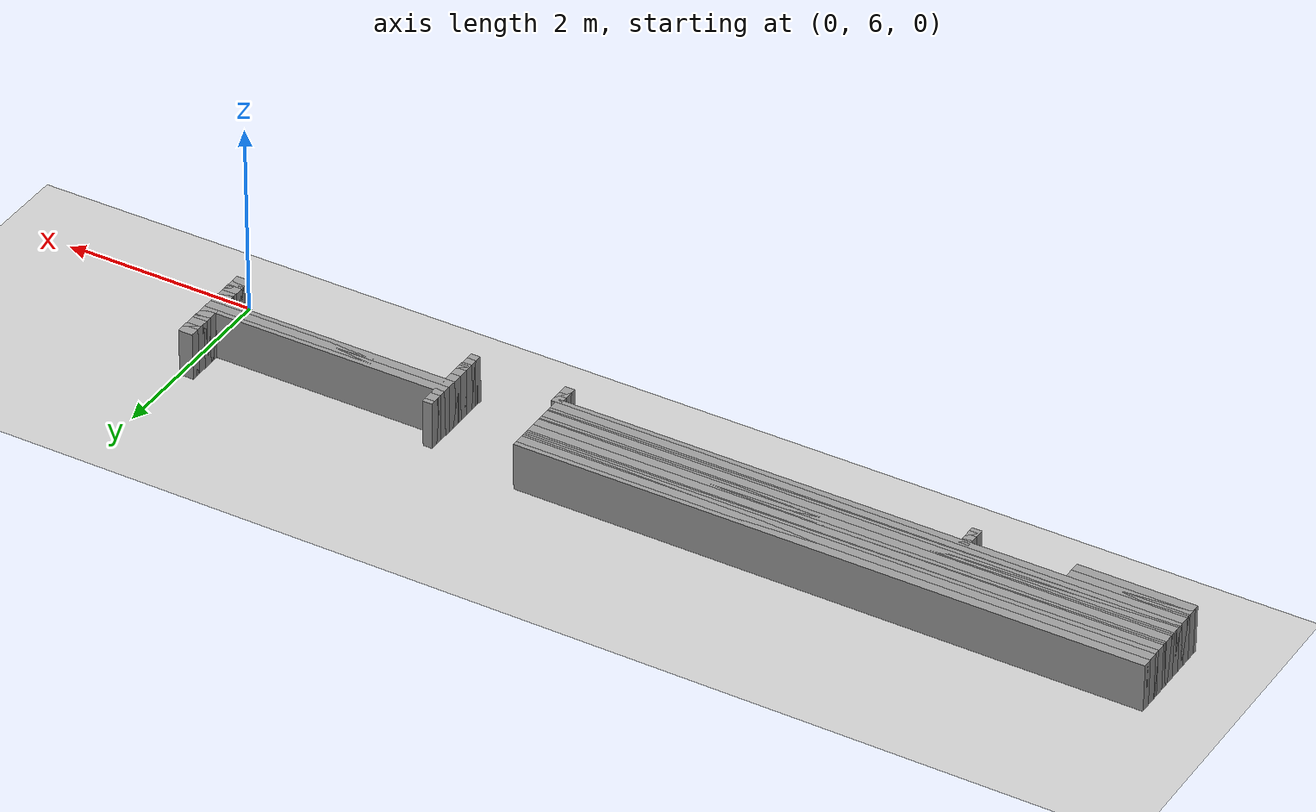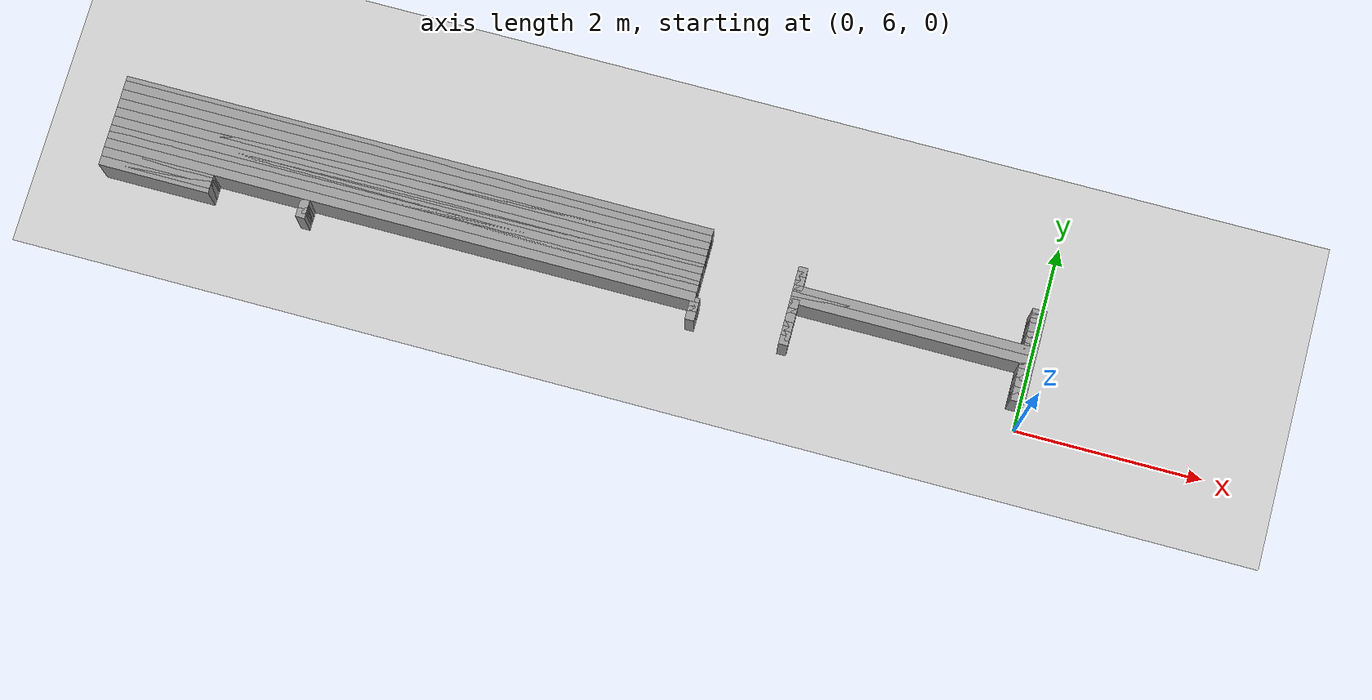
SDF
<sdf version="1.6">
 <world name="GridMap">
  <include><uri>model://sun</uri></include>
  <include><uri>model://ground_plane</uri></include>
  <model name="GridMap">
   <link name="Wall_(51.0,124.0)">
    <collision name="Wall_(51.0,124.0)_Collision">
     <geometry><box><size>0.1 0.1 0.5</size></box></geometry>
     <pose>-2.5500000000000003 6.2 0.25 0 -0 0</pose>
    </collision>
    <inertial>
     <mass>0.5</mass>
     <pose>0 0.01 0 0 0 0</pose>
     <inertia><ixx>0.004</ixx><ixy>0.001</ixy><ixz>0</ixz><iyy>0.006</iyy><iyz>0</iyz><izz>0.007</izz></inertia>
    </inertial>
    <visual name="Wall_(51.0,124.0)_Visual">
     <geometry><box><size>0.1 0.1 0.5</size></box></geometry>
     <pose>-2.5500000000000003 6.2 0.25 0 -0 0</pose>
     <material>
      <script><uri>file://media/materials/scripts/gazebo.material</uri><name>Gazebo/Grey</name></script>
      <ambient>1 1 1 1</ambient>
     </material>
     <meta><layer>0</layer></meta>
    </visual>
   </link>
   <link name="Wall_(71.0,124.0)">
    <collision name="Wall_(71.0,124.0)_Collision">
     <geometry><box><size>0.1 0.1 0.5</size></box></geometry>
     <pose>-3.5500000000000003 6.2 0.25 0 -0 0</pose>
    </collision>
    <inertial>
     <mass>0.5</mass>
     <pose>0 0.01 0 0 0 0</pose>
     <inertia><ixx>0.004</ixx><ixy>0.001</ixy><ixz>0</ixz><iyy>0.006</iyy><iyz>0</iyz><izz>0.007</izz></inertia>
    </inertial>
    <visual name="Wall_(71.0,124.0)_Visual">
     <geometry><box><size>0.1 0.1 0.5</size></box></geometry>
     <pose>-3.5500000000000003 6.2 0.25 0 -0 0</pose>
     <material>
      <script><uri>file://media/materials/scripts/gazebo.material</uri><name>Gazebo/Grey</name></script>
      <ambient>1 1 1 1</ambient>
     </material>
     <meta><layer>0</layer></meta>
    </visual>
   </link>
   <link name="Wall_(155.0,124.0)">
    <collision name="Wall_(155.0,124.0)_Collision">
     <geometry><box><size>0.1 0.1 0.5</size></box></geometry>
     <pose>-7.75 6.2 0.25 0 -0 0</pose>
    </collision>
    <inertial>
     <mass>0.5</mass>
     <pose>0 0.01 0 0 0 0</pose>
     <inertia><ixx>0.004</ixx><ixy>0.001</ixy><ixz>0</ixz><iyy>0.006</iyy><iyz>0</iyz><izz>0.007</izz></inertia>
    </inertial>
    <visual name="Wall_(155.0,124.0)_Visual">
     <geometry><box><size>0.1 0.1 0.5</size></box></geometry>
     <pose>-7.75 6.2 0.25 0 -0 0</pose>
     <material>
      <script><uri>file://media/materials/scripts/gazebo.material</uri><name>Gazebo/Grey</name></script>
      <ambient>1 1 1 1</ambient>
     </material>
     <meta><layer>0</layer></meta>
    </visual>
   </link>
   <link name="Wall_(187.0,124.0)">
    <collision name="Wall_(187.0,124.0)_Collision">
     <geometry><box><size>1.2000000000000002 0.1 0.5</size></box></geometry>
     <pose>-9.35 6.2 0.25 0 -0 0</pose>
    </collision>
    <inertial>
     <mass>0.5</mass>
     <pose>0 0.01 0 0 0 0</pose>
     <inertia><ixx>0.004</ixx><ixy>0.001</ixy><ixz>0</ixz><iyy>0.006</iyy><iyz>0</iyz><izz>0.007</izz></inertia>
    </inertial>
    <visual name="Wall_(187.0,124.0)_Visual">
     <geometry><box><size>1.2000000000000002 0.1 0.5</size></box></geometry>
     <pose>-9.35 6.2 0.25 0 -0 0</pose>
     <material>
      <script><uri>file://media/materials/scripts/gazebo.material</uri><name>Gazebo/Grey</name></script>
      <ambient>1 1 1 1</ambient>
     </material>
     <meta><layer>0</layer></meta>
    </visual>
   </link>
   <link name="Wall_(1.5,125.0)">
    <collision name="Wall_(1.5,125.0)_Collision">
     <geometry><box><size>0.15000000000000002 0.1 0.5</size></box></geometry>
     <pose>-0.07500000000000001 6.25 0.25 0 -0 0</pose>
    </collision>
    <inertial>
     <mass>0.5</mass>
     <pose>0 0.01 0 0 0 0</pose>
     <inertia><ixx>0.004</ixx><ixy>0.001</ixy><ixz>0</ixz><iyy>0.006</iyy><iyz>0</iyz><izz>0.007</izz></inertia>
    </inertial>
    <visual name="Wall_(1.5,125.0)_Visual">
     <geometry><box><size>0.15000000000000002 0.1 0.5</size></box></geometry>
     <pose>-0.07500000000000001 6.25 0.25 0 -0 0</pose>
     <material>
      <script><uri>file://media/materials/scripts/gazebo.material</uri><name>Gazebo/Grey</name></script>
      <ambient>1 1 1 1</ambient>
     </material>
     <meta><layer>0</layer></meta>
    </visual>
   </link>
   <link name="Wall_(51.0,125.0)">
    <collision name="Wall_(51.0,125.0)_Collision">
     <geometry><box><size>0.1 0.1 0.5</size></box></geometry>
     <pose>-2.5500000000000003 6.25 0.25 0 -0 0</pose>
    </collision>
    <inertial>
     <mass>0.5</mass>
     <pose>0 0.01 0 0 0 0</pose>
     <inertia><ixx>0.004</ixx><ixy>0.001</ixy><ixz>0</ixz><iyy>0.006</iyy><iyz>0</iyz><izz>0.007</izz></inertia>
    </inertial>
    <visual name="Wall_(51.0,125.0)_Visual">
     <geometry><box><size>0.1 0.1 0.5</size></box></geometry>
     <pose>-2.5500000000000003 6.25 0.25 0 -0 0</pose>
     <material>
      <script><uri>file://media/materials/scripts/gazebo.material</uri><name>Gazebo/Grey</name></script>
      <ambient>1 1 1 1</ambient>
     </material>
     <meta><layer>0</layer></meta>
    </visual>
   </link>
   <link name="Wall_(71.0,125.0)">
    <collision name="Wall_(71.0,125.0)_Collision">
     <geometry><box><size>0.1 0.1 0.5</size></box></geometry>
     <pose>-3.5500000000000003 6.25 0.25 0 -0 0</pose>
    </collision>
    <inertial>
     <mass>0.5</mass>
     <pose>0 0.01 0 0 0 0</pose>
     <inertia><ixx>0.004</ixx><ixy>0.001</ixy><ixz>0</ixz><iyy>0.006</iyy><iyz>0</iyz><izz>0.007</izz></inertia>
    </inertial>
    <visual name="Wall_(71.0,125.0)_Visual">
     <geometry><box><size>0.1 0.1 0.5</size></box></geometry>
     <pose>-3.5500000000000003 6.25 0.25 0 -0 0</pose>
     <material>
      <script><uri>file://media/materials/scripts/gazebo.material</uri><name>Gazebo/Grey</name></script>
      <ambient>1 1 1 1</ambient>
     </material>
     <meta><layer>0</layer></meta>
    </visual>
   </link>
   <link name="Wall_(155.0,125.0)">
    <collision name="Wall_(155.0,125.0)_Collision">
     <geometry><box><size>0.1 0.1 0.5</size></box></geometry>
     <pose>-7.75 6.25 0.25 0 -0 0</pose>
    </collision>
    <inertial>
     <mass>0.5</mass>
     <pose>0 0.01 0 0 0 0</pose>
     <inertia><ixx>0.004</ixx><ixy>0.001</ixy><ixz>0</ixz><iyy>0.006</iyy><iyz>0</iyz><izz>0.007</izz></inertia>
    </inertial>
    <visual name="Wall_(155.0,125.0)_Visual">
     <geometry><box><size>0.1 0.1 0.5</size></box></geometry>
     <pose>-7.75 6.25 0.25 0 -0 0</pose>
     <material>
      <script><uri>file://media/materials/scripts/gazebo.material</uri><name>Gazebo/Grey</name></script>
      <ambient>1 1 1 1</ambient>
     </material>
     <meta><layer>0</layer></meta>
    </visual>
   </link>
   <link name="Wall_(187.0,125.0)">
    <collision name="Wall_(187.0,125.0)_Collision">
     <geometry><box><size>1.2000000000000002 0.1 0.5</size></box></geometry>
     <pose>-9.35 6.25 0.25 0 -0 0</pose>
    </collision>
    <inertial>
     <mass>0.5</mass>
     <pose>0 0.01 0 0 0 0</pose>
     <inertia><ixx>0.004</ixx><ixy>0.001</ixy><ixz>0</ixz><iyy>0.006</iyy><iyz>0</iyz><izz>0.007</izz></inertia>
    </inertial>
    <visual name="Wall_(187.0,125.0)_Visual">
     <geometry><box><size>1.2000000000000002 0.1 0.5</size></box></geometry>
     <pose>-9.35 6.25 0.25 0 -0 0</pose>
     <material>
      <script><uri>file://media/materials/scripts/gazebo.material</uri><name>Gazebo/Grey</name></script>
      <ambient>1 1 1 1</ambient>
     </material>
     <meta><layer>0</layer></meta>
    </visual>
   </link>
   <link name="Wall_(1.5,126.0)">
    <collision name="Wall_(1.5,126.0)_Collision">
     <geometry><box><size>0.15000000000000002 0.1 0.5</size></box></geometry>
     <pose>-0.07500000000000001 6.300000000000001 0.25 0 -0 0</pose>
    </collision>
    <inertial>
     <mass>0.5</mass>
     <pose>0 0.01 0 0 0 0</pose>
     <inertia><ixx>0.004</ixx><ixy>0.001</ixy><ixz>0</ixz><iyy>0.006</iyy><iyz>0</iyz><izz>0.007</izz></inertia>
    </inertial>
    <visual name="Wall_(1.5,126.0)_Visual">
     <geometry><box><size>0.15000000000000002 0.1 0.5</size></box></geometry>
     <pose>-0.07500000000000001 6.300000000000001 0.25 0 -0 0</pose>
     <material>
      <script><uri>file://media/materials/scripts/gazebo.material</uri><name>Gazebo/Grey</name></script>
      <ambient>1 1 1 1</ambient>
     </material>
     <meta><layer>0</layer></meta>
    </visual>
   </link>
   <link name="Wall_(51.0,126.0)">
    <collision name="Wall_(51.0,126.0)_Collision">
     <geometry><box><size>0.1 0.1 0.5</size></box></geometry>
     <pose>-2.5500000000000003 6.300000000000001 0.25 0 -0 0</pose>
    </collision>
    <inertial>
     <mass>0.5</mass>
     <pose>0 0.01 0 0 0 0</pose>
     <inertia><ixx>0.004</ixx><ixy>0.001</ixy><ixz>0</ixz><iyy>0.006</iyy><iyz>0</iyz><izz>0.007</izz></inertia>
    </inertial>
    <visual name="Wall_(51.0,126.0)_Visual">
     <geometry><box><size>0.1 0.1 0.5</size></box></geometry>
     <pose>-2.5500000000000003 6.300000000000001 0.25 0 -0 0</pose>
     <material>
      <script><uri>file://media/materials/scripts/gazebo.material</uri><name>Gazebo/Grey</name></script>
      <ambient>1 1 1 1</ambient>
     </material>
     <meta><layer>0</layer></meta>
    </visual>
   </link>
   <link name="Wall_(71.0,126.0)">
    <collision name="Wall_(71.0,126.0)_Collision">
     <geometry><box><size>0.1 0.1 0.5</size></box></geometry>
     <pose>-3.5500000000000003 6.300000000000001 0.25 0 -0 0</pose>
    </collision>
    <inertial>
     <mass>0.5</mass>
     <pose>0 0.01 0 0 0 0</pose>
     <inertia><ixx>0.004</ixx><ixy>0.001</ixy><ixz>0</ixz><iyy>0.006</iyy><iyz>0</iyz><izz>0.007</izz></inertia>
    </inertial>
    <visual name="Wall_(71.0,126.0)_Visual">
     <geometry><box><size>0.1 0.1 0.5</size></box></geometry>
     <pose>-3.5500000000000003 6.300000000000001 0.25 0 -0 0</pose>
     <material>
      <script><uri>file://media/materials/scripts/gazebo.material</uri><name>Gazebo/Grey</name></script>
      <ambient>1 1 1 1</ambient>
     </material>
     <meta><layer>0</layer></meta>
    </visual>
   </link>
   <link name="Wall_(155.0,126.0)">
    <collision name="Wall_(155.0,126.0)_Collision">
     <geometry><box><size>0.1 0.1 0.5</size></box></geometry>
     <pose>-7.75 6.300000000000001 0.25 0 -0 0</pose>
    </collision>
    <inertial>
     <mass>0.5</mass>
     <pose>0 0.01 0 0 0 0</pose>
     <inertia><ixx>0.004</ixx><ixy>0.001</ixy><ixz>0</ixz><iyy>0.006</iyy><iyz>0</iyz><izz>0.007</izz></inertia>
    </inertial>
    <visual name="Wall_(155.0,126.0)_Visual">
     <geometry><box><size>0.1 0.1 0.5</size></box></geometry>
     <pose>-7.75 6.300000000000001 0.25 0 -0 0</pose>
     <material>
      <script><uri>file://media/materials/scripts/gazebo.material</uri><name>Gazebo/Grey</name></script>
      <ambient>1 1 1 1</ambient>
     </material>
     <meta><layer>0</layer></meta>
    </visual>
   </link>
   <link name="Wall_(187.0,126.0)">
    <collision name="Wall_(187.0,126.0)_Collision">
     <geometry><box><size>1.2000000000000002 0.1 0.5</size></box></geometry>
     <pose>-9.35 6.300000000000001 0.25 0 -0 0</pose>
    </collision>
    <inertial>
     <mass>0.5</mass>
     <pose>0 0.01 0 0 0 0</pose>
     <inertia><ixx>0.004</ixx><ixy>0.001</ixy><ixz>0</ixz><iyy>0.006</iyy><iyz>0</iyz><izz>0.007</izz></inertia>
    </inertial>
    <visual name="Wall_(187.0,126.0)_Visual">
     <geometry><box><size>1.2000000000000002 0.1 0.5</size></box></geometry>
     <pose>-9.35 6.300000000000001 0.25 0 -0 0</pose>
     <material>
      <script><uri>file://media/materials/scripts/gazebo.material</uri><name>Gazebo/Grey</name></script>
      <ambient>1 1 1 1</ambient>
     </material>
     <meta><layer>0</layer></meta>
    </visual>
   </link>
   <link name="Wall_(1.5,127.0)">
    <collision name="Wall_(1.5,127.0)_Collision">
     <geometry><box><size>0.15000000000000002 0.1 0.5</size></box></geometry>
     <pose>-0.07500000000000001 6.3500000000000005 0.25 0 -0 0</pose>
    </collision>
    <inertial>
     <mass>0.5</mass>
     <pose>0 0.01 0 0 0 0</pose>
     <inertia><ixx>0.004</ixx><ixy>0.001</ixy><ixz>0</ixz><iyy>0.006</iyy><iyz>0</iyz><izz>0.007</izz></inertia>
    </inertial>
    <visual name="Wall_(1.5,127.0)_Visual">
     <geometry><box><size>0.15000000000000002 0.1 0.5</size></box></geometry>
     <pose>-0.07500000000000001 6.3500000000000005 0.25 0 -0 0</pose>
     <material>
      <script><uri>file://media/materials/scripts/gazebo.material</uri><name>Gazebo/Grey</name></script>
      <ambient>1 1 1 1</ambient>
     </material>
     <meta><layer>0</layer></meta>
    </visual>
   </link>
   <link name="Wall_(51.0,127.0)">
    <collision name="Wall_(51.0,127.0)_Collision">
     <geometry><box><size>0.1 0.1 0.5</size></box></geometry>
     <pose>-2.5500000000000003 6.3500000000000005 0.25 0 -0 0</pose>
    </collision>
    <inertial>
     <mass>0.5</mass>
     <pose>0 0.01 0 0 0 0</pose>
     <inertia><ixx>0.004</ixx><ixy>0.001</ixy><ixz>0</ixz><iyy>0.006</iyy><iyz>0</iyz><izz>0.007</izz></inertia>
    </inertial>
    <visual name="Wall_(51.0,127.0)_Visual">
     <geometry><box><size>0.1 0.1 0.5</size></box></geometry>
     <pose>-2.5500000000000003 6.3500000000000005 0.25 0 -0 0</pose>
     <material>
      <script><uri>file://media/materials/scripts/gazebo.material</uri><name>Gazebo/Grey</name></script>
      <ambient>1 1 1 1</ambient>
     </material>
     <meta><layer>0</layer></meta>
    </visual>
   </link>
   <link name="Wall_(71.0,127.0)">
    <collision name="Wall_(71.0,127.0)_Collision">
     <geometry><box><size>0.1 0.1 0.5</size></box></geometry>
     <pose>-3.5500000000000003 6.3500000000000005 0.25 0 -0 0</pose>
    </collision>
    <inertial>
     <mass>0.5</mass>
     <pose>0 0.01 0 0 0 0</pose>
     <inertia><ixx>0.004</ixx><ixy>0.001</ixy><ixz>0</ixz><iyy>0.006</iyy><iyz>0</iyz><izz>0.007</izz></inertia>
    </inertial>
    <visual name="Wall_(71.0,127.0)_Visual">
     <geometry><box><size>0.1 0.1 0.5</size></box></geometry>
     <pose>-3.5500000000000003 6.3500000000000005 0.25 0 -0 0</pose>
     <material>
      <script><uri>file://media/materials/scripts/gazebo.material</uri><name>Gazebo/Grey</name></script>
      <ambient>1 1 1 1</ambient>
     </material>
     <meta><layer>0</layer></meta>
    </visual>
   </link>
   <link name="Wall_(155.0,127.0)">
    <collision name="Wall_(155.0,127.0)_Collision">
     <geometry><box><size>0.1 0.1 0.5</size></box></geometry>
     <pose>-7.75 6.3500000000000005 0.25 0 -0 0</pose>
    </collision>
    <inertial>
     <mass>0.5</mass>
     <pose>0 0.01 0 0 0 0</pose>
     <inertia><ixx>0.004</ixx><ixy>0.001</ixy><ixz>0</ixz><iyy>0.006</iyy><iyz>0</iyz><izz>0.007</izz></inertia>
    </inertial>
    <visual name="Wall_(155.0,127.0)_Visual">
     <geometry><box><size>0.1 0.1 0.5</size></box></geometry>
     <pose>-7.75 6.3500000000000005 0.25 0 -0 0</pose>
     <material>
      <script><uri>file://media/materials/scripts/gazebo.material</uri><name>Gazebo/Grey</name></script>
      <ambient>1 1 1 1</ambient>
     </material>
     <meta><layer>0</layer></meta>
    </visual>
   </link>
   <link name="Wall_(187.0,127.0)">
    <collision name="Wall_(187.0,127.0)_Collision">
     <geometry><box><size>1.2000000000000002 0.1 0.5</size></box></geometry>
     <pose>-9.35 6.3500000000000005 0.25 0 -0 0</pose>
    </collision>
    <inertial>
     <mass>0.5</mass>
     <pose>0 0.01 0 0 0 0</pose>
     <inertia><ixx>0.004</ixx><ixy>0.001</ixy><ixz>0</ixz><iyy>0.006</iyy><iyz>0</iyz><izz>0.007</izz></inertia>
    </inertial>
    <visual name="Wall_(187.0,127.0)_Visual">
     <geometry><box><size>1.2000000000000002 0.1 0.5</size></box></geometry>
     <pose>-9.35 6.3500000000000005 0.25 0 -0 0</pose>
     <material>
      <script><uri>file://media/materials/scripts/gazebo.material</uri><name>Gazebo/Grey</name></script>
      <ambient>1 1 1 1</ambient>
     </material>
     <meta><layer>0</layer></meta>
    </visual>
   </link>
   <link name="Wall_(1.5,128.0)">
    <collision name="Wall_(1.5,128.0)_Collision">
     <geometry><box><size>0.15000000000000002 0.1 0.5</size></box></geometry>
     <pose>-0.07500000000000001 6.4 0.25 0 -0 0</pose>
    </collision>
    <inertial>
     <mass>0.5</mass>
     <pose>0 0.01 0 0 0 0</pose>
     <inertia><ixx>0.004</ixx><ixy>0.001</ixy><ixz>0</ixz><iyy>0.006</iyy><iyz>0</iyz><izz>0.007</izz></inertia>
    </inertial>
    <visual name="Wall_(1.5,128.0)_Visual">
     <geometry><box><size>0.15000000000000002 0.1 0.5</size></box></geometry>
     <pose>-0.07500000000000001 6.4 0.25 0 -0 0</pose>
     <material>
      <script><uri>file://media/materials/scripts/gazebo.material</uri><name>Gazebo/Grey</name></script>
      <ambient>1 1 1 1</ambient>
     </material>
     <meta><layer>0</layer></meta>
    </visual>
   </link>
   <link name="Wall_(51.0,128.0)">
    <collision name="Wall_(51.0,128.0)_Collision">
     <geometry><box><size>0.1 0.1 0.5</size></box></geometry>
     <pose>-2.5500000000000003 6.4 0.25 0 -0 0</pose>
    </collision>
    <inertial>
     <mass>0.5</mass>
     <pose>0 0.01 0 0 0 0</pose>
     <inertia><ixx>0.004</ixx><ixy>0.001</ixy><ixz>0</ixz><iyy>0.006</iyy><iyz>0</iyz><izz>0.007</izz></inertia>
    </inertial>
    <visual name="Wall_(51.0,128.0)_Visual">
     <geometry><box><size>0.1 0.1 0.5</size></box></geometry>
     <pose>-2.5500000000000003 6.4 0.25 0 -0 0</pose>
     <material>
      <script><uri>file://media/materials/scripts/gazebo.material</uri><name>Gazebo/Grey</name></script>
      <ambient>1 1 1 1</ambient>
     </material>
     <meta><layer>0</layer></meta>
    </visual>
   </link>
   <link name="Wall_(135.0,128.0)">
    <collision name="Wall_(135.0,128.0)_Collision">
     <geometry><box><size>6.4 0.1 0.5</size></box></geometry>
     <pose>-6.75 6.4 0.25 0 -0 0</pose>
    </collision>
    <inertial>
     <mass>0.5</mass>
     <pose>0 0.01 0 0 0 0</pose>
     <inertia><ixx>0.004</ixx><ixy>0.001</ixy><ixz>0</ixz><iyy>0.006</iyy><iyz>0</iyz><izz>0.007</izz></inertia>
    </inertial>
    <visual name="Wall_(135.0,128.0)_Visual">
     <geometry><box><size>6.4 0.1 0.5</size></box></geometry>
     <pose>-6.75 6.4 0.25 0 -0 0</pose>
     <material>
      <script><uri>file://media/materials/scripts/gazebo.material</uri><name>Gazebo/Grey</name></script>
      <ambient>1 1 1 1</ambient>
     </material>
     <meta><layer>0</layer></meta>
    </visual>
   </link>
   <link name="Wall_(1.5,129.0)">
    <collision name="Wall_(1.5,129.0)_Collision">
     <geometry><box><size>0.15000000000000002 0.1 0.5</size></box></geometry>
     <pose>-0.07500000000000001 6.45 0.25 0 -0 0</pose>
    </collision>
    <inertial>
     <mass>0.5</mass>
     <pose>0 0.01 0 0 0 0</pose>
     <inertia><ixx>0.004</ixx><ixy>0.001</ixy><ixz>0</ixz><iyy>0.006</iyy><iyz>0</iyz><izz>0.007</izz></inertia>
    </inertial>
    <visual name="Wall_(1.5,129.0)_Visual">
     <geometry><box><size>0.15000000000000002 0.1 0.5</size></box></geometry>
     <pose>-0.07500000000000001 6.45 0.25 0 -0 0</pose>
     <material>
      <script><uri>file://media/materials/scripts/gazebo.material</uri><name>Gazebo/Grey</name></script>
      <ambient>1 1 1 1</ambient>
     </material>
     <meta><layer>0</layer></meta>
    </visual>
   </link>
   <link name="Wall_(51.0,129.0)">
    <collision name="Wall_(51.0,129.0)_Collision">
     <geometry><box><size>0.1 0.1 0.5</size></box></geometry>
     <pose>-2.5500000000000003 6.45 0.25 0 -0 0</pose>
    </collision>
    <inertial>
     <mass>0.5</mass>
     <pose>0 0.01 0 0 0 0</pose>
     <inertia><ixx>0.004</ixx><ixy>0.001</ixy><ixz>0</ixz><iyy>0.006</iyy><iyz>0</iyz><izz>0.007</izz></inertia>
    </inertial>
    <visual name="Wall_(51.0,129.0)_Visual">
     <geometry><box><size>0.1 0.1 0.5</size></box></geometry>
     <pose>-2.5500000000000003 6.45 0.25 0 -0 0</pose>
     <material>
      <script><uri>file://media/materials/scripts/gazebo.material</uri><name>Gazebo/Grey</name></script>
      <ambient>1 1 1 1</ambient>
     </material>
     <meta><layer>0</layer></meta>
    </visual>
   </link>
   <link name="Wall_(135.0,129.0)">
    <collision name="Wall_(135.0,129.0)_Collision">
     <geometry><box><size>6.4 0.1 0.5</size></box></geometry>
     <pose>-6.75 6.45 0.25 0 -0 0</pose>
    </collision>
    <inertial>
     <mass>0.5</mass>
     <pose>0 0.01 0 0 0 0</pose>
     <inertia><ixx>0.004</ixx><ixy>0.001</ixy><ixz>0</ixz><iyy>0.006</iyy><iyz>0</iyz><izz>0.007</izz></inertia>
    </inertial>
    <visual name="Wall_(135.0,129.0)_Visual">
     <geometry><box><size>6.4 0.1 0.5</size></box></geometry>
     <pose>-6.75 6.45 0.25 0 -0 0</pose>
     <material>
      <script><uri>file://media/materials/scripts/gazebo.material</uri><name>Gazebo/Grey</name></script>
      <ambient>1 1 1 1</ambient>
     </material>
     <meta><layer>0</layer></meta>
    </visual>
   </link>
   <link name="Wall_(1.5,130.0)">
    <collision name="Wall_(1.5,130.0)_Collision">
     <geometry><box><size>0.15000000000000002 0.1 0.5</size></box></geometry>
     <pose>-0.07500000000000001 6.5 0.25 0 -0 0</pose>
    </collision>
    <inertial>
     <mass>0.5</mass>
     <pose>0 0.01 0 0 0 0</pose>
     <inertia><ixx>0.004</ixx><ixy>0.001</ixy><ixz>0</ixz><iyy>0.006</iyy><iyz>0</iyz><izz>0.007</izz></inertia>
    </inertial>
    <visual name="Wall_(1.5,130.0)_Visual">
     <geometry><box><size>0.15000000000000002 0.1 0.5</size></box></geometry>
     <pose>-0.07500000000000001 6.5 0.25 0 -0 0</pose>
     <material>
      <script><uri>file://media/materials/scripts/gazebo.material</uri><name>Gazebo/Grey</name></script>
      <ambient>1 1 1 1</ambient>
     </material>
     <meta><layer>0</layer></meta>
    </visual>
   </link>
   <link name="Wall_(51.0,130.0)">
    <collision name="Wall_(51.0,130.0)_Collision">
     <geometry><box><size>0.1 0.1 0.5</size></box></geometry>
     <pose>-2.5500000000000003 6.5 0.25 0 -0 0</pose>
    </collision>
    <inertial>
     <mass>0.5</mass>
     <pose>0 0.01 0 0 0 0</pose>
     <inertia><ixx>0.004</ixx><ixy>0.001</ixy><ixz>0</ixz><iyy>0.006</iyy><iyz>0</iyz><izz>0.007</izz></inertia>
    </inertial>
    <visual name="Wall_(51.0,130.0)_Visual">
     <geometry><box><size>0.1 0.1 0.5</size></box></geometry>
     <pose>-2.5500000000000003 6.5 0.25 0 -0 0</pose>
     <material>
      <script><uri>file://media/materials/scripts/gazebo.material</uri><name>Gazebo/Grey</name></script>
      <ambient>1 1 1 1</ambient>
     </material>
     <meta><layer>0</layer></meta>
    </visual>
   </link>
   <link name="Wall_(135.0,130.0)">
    <collision name="Wall_(135.0,130.0)_Collision">
     <geometry><box><size>6.4 0.1 0.5</size></box></geometry>
     <pose>-6.75 6.5 0.25 0 -0 0</pose>
    </collision>
    <inertial>
     <mass>0.5</mass>
     <pose>0 0.01 0 0 0 0</pose>
     <inertia><ixx>0.004</ixx><ixy>0.001</ixy><ixz>0</ixz><iyy>0.006</iyy><iyz>0</iyz><izz>0.007</izz></inertia>
    </inertial>
    <visual name="Wall_(135.0,130.0)_Visual">
     <geometry><box><size>6.4 0.1 0.5</size></box></geometry>
     <pose>-6.75 6.5 0.25 0 -0 0</pose>
     <material>
      <script><uri>file://media/materials/scripts/gazebo.material</uri><name>Gazebo/Grey</name></script>
      <ambient>1 1 1 1</ambient>
     </material>
     <meta><layer>0</layer></meta>
    </visual>
   </link>
   <link name="Wall_(1.5,131.0)">
    <collision name="Wall_(1.5,131.0)_Collision">
     <geometry><box><size>0.15000000000000002 0.1 0.5</size></box></geometry>
     <pose>-0.07500000000000001 6.550000000000001 0.25 0 -0 0</pose>
    </collision>
    <inertial>
     <mass>0.5</mass>
     <pose>0 0.01 0 0 0 0</pose>
     <inertia><ixx>0.004</ixx><ixy>0.001</ixy><ixz>0</ixz><iyy>0.006</iyy><iyz>0</iyz><izz>0.007</izz></inertia>
    </inertial>
    <visual name="Wall_(1.5,131.0)_Visual">
     <geometry><box><size>0.15000000000000002 0.1 0.5</size></box></geometry>
     <pose>-0.07500000000000001 6.550000000000001 0.25 0 -0 0</pose>
     <material>
      <script><uri>file://media/materials/scripts/gazebo.material</uri><name>Gazebo/Grey</name></script>
      <ambient>1 1 1 1</ambient>
     </material>
     <meta><layer>0</layer></meta>
    </visual>
   </link>
   <link name="Wall_(51.0,131.0)">
    <collision name="Wall_(51.0,131.0)_Collision">
     <geometry><box><size>0.1 0.1 0.5</size></box></geometry>
     <pose>-2.5500000000000003 6.550000000000001 0.25 0 -0 0</pose>
    </collision>
    <inertial>
     <mass>0.5</mass>
     <pose>0 0.01 0 0 0 0</pose>
     <inertia><ixx>0.004</ixx><ixy>0.001</ixy><ixz>0</ixz><iyy>0.006</iyy><iyz>0</iyz><izz>0.007</izz></inertia>
    </inertial>
    <visual name="Wall_(51.0,131.0)_Visual">
     <geometry><box><size>0.1 0.1 0.5</size></box></geometry>
     <pose>-2.5500000000000003 6.550000000000001 0.25 0 -0 0</pose>
     <material>
      <script><uri>file://media/materials/scripts/gazebo.material</uri><name>Gazebo/Grey</name></script>
      <ambient>1 1 1 1</ambient>
     </material>
     <meta><layer>0</layer></meta>
    </visual>
   </link>
   <link name="Wall_(135.0,131.0)">
    <collision name="Wall_(135.0,131.0)_Collision">
     <geometry><box><size>6.4 0.1 0.5</size></box></geometry>
     <pose>-6.75 6.550000000000001 0.25 0 -0 0</pose>
    </collision>
    <inertial>
     <mass>0.5</mass>
     <pose>0 0.01 0 0 0 0</pose>
     <inertia><ixx>0.004</ixx><ixy>0.001</ixy><ixz>0</ixz><iyy>0.006</iyy><iyz>0</iyz><izz>0.007</izz></inertia>
    </inertial>
    <visual name="Wall_(135.0,131.0)_Visual">
     <geometry><box><size>6.4 0.1 0.5</size></box></geometry>
     <pose>-6.75 6.550000000000001 0.25 0 -0 0</pose>
     <material>
      <script><uri>file://media/materials/scripts/gazebo.material</uri><name>Gazebo/Grey</name></script>
      <ambient>1 1 1 1</ambient>
     </material>
     <meta><layer>0</layer></meta>
    </visual>
   </link>
   <link name="Wall_(1.5,132.0)">
    <collision name="Wall_(1.5,132.0)_Collision">
     <geometry><box><size>0.15000000000000002 0.1 0.5</size></box></geometry>
     <pose>-0.07500000000000001 6.6000000000000005 0.25 0 -0 0</pose>
    </collision>
    <inertial>
     <mass>0.5</mass>
     <pose>0 0.01 0 0 0 0</pose>
     <inertia><ixx>0.004</ixx><ixy>0.001</ixy><ixz>0</ixz><iyy>0.006</iyy><iyz>0</iyz><izz>0.007</izz></inertia>
    </inertial>
    <visual name="Wall_(1.5,132.0)_Visual">
     <geometry><box><size>0.15000000000000002 0.1 0.5</size></box></geometry>
     <pose>-0.07500000000000001 6.6000000000000005 0.25 0 -0 0</pose>
     <material>
      <script><uri>file://media/materials/scripts/gazebo.material</uri><name>Gazebo/Grey</name></script>
      <ambient>1 1 1 1</ambient>
     </material>
     <meta><layer>0</layer></meta>
    </visual>
   </link>
   <link name="Wall_(51.0,132.0)">
    <collision name="Wall_(51.0,132.0)_Collision">
     <geometry><box><size>0.1 0.1 0.5</size></box></geometry>
     <pose>-2.5500000000000003 6.6000000000000005 0.25 0 -0 0</pose>
    </collision>
    <inertial>
     <mass>0.5</mass>
     <pose>0 0.01 0 0 0 0</pose>
     <inertia><ixx>0.004</ixx><ixy>0.001</ixy><ixz>0</ixz><iyy>0.006</iyy><iyz>0</iyz><izz>0.007</izz></inertia>
    </inertial>
    <visual name="Wall_(51.0,132.0)_Visual">
     <geometry><box><size>0.1 0.1 0.5</size></box></geometry>
     <pose>-2.5500000000000003 6.6000000000000005 0.25 0 -0 0</pose>
     <material>
      <script><uri>file://media/materials/scripts/gazebo.material</uri><name>Gazebo/Grey</name></script>
      <ambient>1 1 1 1</ambient>
     </material>
     <meta><layer>0</layer></meta>
    </visual>
   </link>
   <link name="Wall_(135.0,132.0)">
    <collision name="Wall_(135.0,132.0)_Collision">
     <geometry><box><size>6.4 0.1 0.5</size></box></geometry>
     <pose>-6.75 6.6000000000000005 0.25 0 -0 0</pose>
    </collision>
    <inertial>
     <mass>0.5</mass>
     <pose>0 0.01 0 0 0 0</pose>
     <inertia><ixx>0.004</ixx><ixy>0.001</ixy><ixz>0</ixz><iyy>0.006</iyy><iyz>0</iyz><izz>0.007</izz></inertia>
    </inertial>
    <visual name="Wall_(135.0,132.0)_Visual">
     <geometry><box><size>6.4 0.1 0.5</size></box></geometry>
     <pose>-6.75 6.6000000000000005 0.25 0 -0 0</pose>
     <material>
      <script><uri>file://media/materials/scripts/gazebo.material</uri><name>Gazebo/Grey</name></script>
      <ambient>1 1 1 1</ambient>
     </material>
     <meta><layer>0</layer></meta>
    </visual>
   </link>
   <link name="Wall_(26.0,133.0)">
    <collision name="Wall_(26.0,133.0)_Collision">
     <geometry><box><size>2.6 0.1 0.5</size></box></geometry>
     <pose>-1.3 6.65 0.25 0 -0 0</pose>
    </collision>
    <inertial>
     <mass>0.5</mass>
     <pose>0 0.01 0 0 0 0</pose>
     <inertia><ixx>0.004</ixx><ixy>0.001</ixy><ixz>0</ixz><iyy>0.006</iyy><iyz>0</iyz><izz>0.007</izz></inertia>
    </inertial>
    <visual name="Wall_(26.0,133.0)_Visual">
     <geometry><box><size>2.6 0.1 0.5</size></box></geometry>
     <pose>-1.3 6.65 0.25 0 -0 0</pose>
     <material>
      <script><uri>file://media/materials/scripts/gazebo.material</uri><name>Gazebo/Grey</name></script>
      <ambient>1 1 1 1</ambient>
     </material>
     <meta><layer>0</layer></meta>
    </visual>
   </link>
   <link name="Wall_(135.0,133.0)">
    <collision name="Wall_(135.0,133.0)_Collision">
     <geometry><box><size>6.4 0.1 0.5</size></box></geometry>
     <pose>-6.75 6.65 0.25 0 -0 0</pose>
    </collision>
    <inertial>
     <mass>0.5</mass>
     <pose>0 0.01 0 0 0 0</pose>
     <inertia><ixx>0.004</ixx><ixy>0.001</ixy><ixz>0</ixz><iyy>0.006</iyy><iyz>0</iyz><izz>0.007</izz></inertia>
    </inertial>
    <visual name="Wall_(135.0,133.0)_Visual">
     <geometry><box><size>6.4 0.1 0.5</size></box></geometry>
     <pose>-6.75 6.65 0.25 0 -0 0</pose>
     <material>
      <script><uri>file://media/materials/scripts/gazebo.material</uri><name>Gazebo/Grey</name></script>
      <ambient>1 1 1 1</ambient>
     </material>
     <meta><layer>0</layer></meta>
    </visual>
   </link>
   <link name="Wall_(26.0,134.0)">
    <collision name="Wall_(26.0,134.0)_Collision">
     <geometry><box><size>2.6 0.1 0.5</size></box></geometry>
     <pose>-1.3 6.7 0.25 0 -0 0</pose>
    </collision>
    <inertial>
     <mass>0.5</mass>
     <pose>0 0.01 0 0 0 0</pose>
     <inertia><ixx>0.004</ixx><ixy>0.001</ixy><ixz>0</ixz><iyy>0.006</iyy><iyz>0</iyz><izz>0.007</izz></inertia>
    </inertial>
    <visual name="Wall_(26.0,134.0)_Visual">
     <geometry><box><size>2.6 0.1 0.5</size></box></geometry>
     <pose>-1.3 6.7 0.25 0 -0 0</pose>
     <material>
      <script><uri>file://media/materials/scripts/gazebo.material</uri><name>Gazebo/Grey</name></script>
      <ambient>1 1 1 1</ambient>
     </material>
     <meta><layer>0</layer></meta>
    </visual>
   </link>
   <link name="Wall_(135.0,134.0)">
    <collision name="Wall_(135.0,134.0)_Collision">
     <geometry><box><size>6.4 0.1 0.5</size></box></geometry>
     <pose>-6.75 6.7 0.25 0 -0 0</pose>
    </collision>
    <inertial>
     <mass>0.5</mass>
     <pose>0 0.01 0 0 0 0</pose>
     <inertia><ixx>0.004</ixx><ixy>0.001</ixy><ixz>0</ixz><iyy>0.006</iyy><iyz>0</iyz><izz>0.007</izz></inertia>
    </inertial>
    <visual name="Wall_(135.0,134.0)_Visual">
     <geometry><box><size>6.4 0.1 0.5</size></box></geometry>
     <pose>-6.75 6.7 0.25 0 -0 0</pose>
     <material>
      <script><uri>file://media/materials/scripts/gazebo.material</uri><name>Gazebo/Grey</name></script>
      <ambient>1 1 1 1</ambient>
     </material>
     <meta><layer>0</layer></meta>
    </visual>
   </link>
   <link name="Wall_(26.0,135.0)">
    <collision name="Wall_(26.0,135.0)_Collision">
     <geometry><box><size>2.6 0.1 0.5</size></box></geometry>
     <pose>-1.3 6.75 0.25 0 -0 0</pose>
    </collision>
    <inertial>
     <mass>0.5</mass>
     <pose>0 0.01 0 0 0 0</pose>
     <inertia><ixx>0.004</ixx><ixy>0.001</ixy><ixz>0</ixz><iyy>0.006</iyy><iyz>0</iyz><izz>0.007</izz></inertia>
    </inertial>
    <visual name="Wall_(26.0,135.0)_Visual">
     <geometry><box><size>2.6 0.1 0.5</size></box></geometry>
     <pose>-1.3 6.75 0.25 0 -0 0</pose>
     <material>
      <script><uri>file://media/materials/scripts/gazebo.material</uri><name>Gazebo/Grey</name></script>
      <ambient>1 1 1 1</ambient>
     </material>
     <meta><layer>0</layer></meta>
    </visual>
   </link>
   <link name="Wall_(135.0,135.0)">
    <collision name="Wall_(135.0,135.0)_Collision">
     <geometry><box><size>6.4 0.1 0.5</size></box></geometry>
     <pose>-6.75 6.75 0.25 0 -0 0</pose>
    </collision>
    <inertial>
     <mass>0.5</mass>
     <pose>0 0.01 0 0 0 0</pose>
     <inertia><ixx>0.004</ixx><ixy>0.001</ixy><ixz>0</ixz><iyy>0.006</iyy><iyz>0</iyz><izz>0.007</izz></inertia>
    </inertial>
    <visual name="Wall_(135.0,135.0)_Visual">
     <geometry><box><size>6.4 0.1 0.5</size></box></geometry>
     <pose>-6.75 6.75 0.25 0 -0 0</pose>
     <material>
      <script><uri>file://media/materials/scripts/gazebo.material</uri><name>Gazebo/Grey</name></script>
      <ambient>1 1 1 1</ambient>
     </material>
     <meta><layer>0</layer></meta>
    </visual>
   </link>
   <link name="Wall_(1.5,136.0)">
    <collision name="Wall_(1.5,136.0)_Collision">
     <geometry><box><size>0.15000000000000002 0.1 0.5</size></box></geometry>
     <pose>-0.07500000000000001 6.800000000000001 0.25 0 -0 0</pose>
    </collision>
    <inertial>
     <mass>0.5</mass>
     <pose>0 0.01 0 0 0 0</pose>
     <inertia><ixx>0.004</ixx><ixy>0.001</ixy><ixz>0</ixz><iyy>0.006</iyy><iyz>0</iyz><izz>0.007</izz></inertia>
    </inertial>
    <visual name="Wall_(1.5,136.0)_Visual">
     <geometry><box><size>0.15000000000000002 0.1 0.5</size></box></geometry>
     <pose>-0.07500000000000001 6.800000000000001 0.25 0 -0 0</pose>
     <material>
      <script><uri>file://media/materials/scripts/gazebo.material</uri><name>Gazebo/Grey</name></script>
      <ambient>1 1 1 1</ambient>
     </material>
     <meta><layer>0</layer></meta>
    </visual>
   </link>
   <link name="Wall_(51.0,136.0)">
    <collision name="Wall_(51.0,136.0)_Collision">
     <geometry><box><size>0.1 0.1 0.5</size></box></geometry>
     <pose>-2.5500000000000003 6.800000000000001 0.25 0 -0 0</pose>
    </collision>
    <inertial>
     <mass>0.5</mass>
     <pose>0 0.01 0 0 0 0</pose>
     <inertia><ixx>0.004</ixx><ixy>0.001</ixy><ixz>0</ixz><iyy>0.006</iyy><iyz>0</iyz><izz>0.007</izz></inertia>
    </inertial>
    <visual name="Wall_(51.0,136.0)_Visual">
     <geometry><box><size>0.1 0.1 0.5</size></box></geometry>
     <pose>-2.5500000000000003 6.800000000000001 0.25 0 -0 0</pose>
     <material>
      <script><uri>file://media/materials/scripts/gazebo.material</uri><name>Gazebo/Grey</name></script>
      <ambient>1 1 1 1</ambient>
     </material>
     <meta><layer>0</layer></meta>
    </visual>
   </link>
   <link name="Wall_(135.0,136.0)">
    <collision name="Wall_(135.0,136.0)_Collision">
     <geometry><box><size>6.4 0.1 0.5</size></box></geometry>
     <pose>-6.75 6.800000000000001 0.25 0 -0 0</pose>
    </collision>
    <inertial>
     <mass>0.5</mass>
     <pose>0 0.01 0 0 0 0</pose>
     <inertia><ixx>0.004</ixx><ixy>0.001</ixy><ixz>0</ixz><iyy>0.006</iyy><iyz>0</iyz><izz>0.007</izz></inertia>
    </inertial>
    <visual name="Wall_(135.0,136.0)_Visual">
     <geometry><box><size>6.4 0.1 0.5</size></box></geometry>
     <pose>-6.75 6.800000000000001 0.25 0 -0 0</pose>
     <material>
      <script><uri>file://media/materials/scripts/gazebo.material</uri><name>Gazebo/Grey</name></script>
      <ambient>1 1 1 1</ambient>
     </material>
     <meta><layer>0</layer></meta>
    </visual>
   </link>
   <link name="Wall_(1.5,137.0)">
    <collision name="Wall_(1.5,137.0)_Collision">
     <geometry><box><size>0.15000000000000002 0.1 0.5</size></box></geometry>
     <pose>-0.07500000000000001 6.8500000000000005 0.25 0 -0 0</pose>
    </collision>
    <inertial>
     <mass>0.5</mass>
     <pose>0 0.01 0 0 0 0</pose>
     <inertia><ixx>0.004</ixx><ixy>0.001</ixy><ixz>0</ixz><iyy>0.006</iyy><iyz>0</iyz><izz>0.007</izz></inertia>
    </inertial>
    <visual name="Wall_(1.5,137.0)_Visual">
     <geometry><box><size>0.15000000000000002 0.1 0.5</size></box></geometry>
     <pose>-0.07500000000000001 6.8500000000000005 0.25 0 -0 0</pose>
     <material>
      <script><uri>file://media/materials/scripts/gazebo.material</uri><name>Gazebo/Grey</name></script>
      <ambient>1 1 1 1</ambient>
     </material>
     <meta><layer>0</layer></meta>
    </visual>
   </link>
   <link name="Wall_(51.0,137.0)">
    <collision name="Wall_(51.0,137.0)_Collision">
     <geometry><box><size>0.1 0.1 0.5</size></box></geometry>
     <pose>-2.5500000000000003 6.8500000000000005 0.25 0 -0 0</pose>
    </collision>
    <inertial>
     <mass>0.5</mass>
     <pose>0 0.01 0 0 0 0</pose>
     <inertia><ixx>0.004</ixx><ixy>0.001</ixy><ixz>0</ixz><iyy>0.006</iyy><iyz>0</iyz><izz>0.007</izz></inertia>
    </inertial>
    <visual name="Wall_(51.0,137.0)_Visual">
     <geometry><box><size>0.1 0.1 0.5</size></box></geometry>
     <pose>-2.5500000000000003 6.8500000000000005 0.25 0 -0 0</pose>
     <material>
      <script><uri>file://media/materials/scripts/gazebo.material</uri><name>Gazebo/Grey</name></script>
      <ambient>1 1 1 1</ambient>
     </material>
     <meta><layer>0</layer></meta>
    </visual>
   </link>
   <link name="Wall_(135.0,137.0)">
    <collision name="Wall_(135.0,137.0)_Collision">
     <geometry><box><size>6.4 0.1 0.5</size></box></geometry>
     <pose>-6.75 6.8500000000000005 0.25 0 -0 0</pose>
    </collision>
    <inertial>
     <mass>0.5</mass>
     <pose>0 0.01 0 0 0 0</pose>
     <inertia><ixx>0.004</ixx><ixy>0.001</ixy><ixz>0</ixz><iyy>0.006</iyy><iyz>0</iyz><izz>0.007</izz></inertia>
    </inertial>
    <visual name="Wall_(135.0,137.0)_Visual">
     <geometry><box><size>6.4 0.1 0.5</size></box></geometry>
     <pose>-6.75 6.8500000000000005 0.25 0 -0 0</pose>
     <material>
      <script><uri>file://media/materials/scripts/gazebo.material</uri><name>Gazebo/Grey</name></script>
      <ambient>1 1 1 1</ambient>
     </material>
     <meta><layer>0</layer></meta>
    </visual>
   </link>
   <link name="Wall_(1.5,138.0)">
    <collision name="Wall_(1.5,138.0)_Collision">
     <geometry><box><size>0.15000000000000002 0.1 0.5</size></box></geometry>
     <pose>-0.07500000000000001 6.9 0.25 0 -0 0</pose>
    </collision>
    <inertial>
     <mass>0.5</mass>
     <pose>0 0.01 0 0 0 0</pose>
     <inertia><ixx>0.004</ixx><ixy>0.001</ixy><ixz>0</ixz><iyy>0.006</iyy><iyz>0</iyz><izz>0.007</izz></inertia>
    </inertial>
    <visual name="Wall_(1.5,138.0)_Visual">
     <geometry><box><size>0.15000000000000002 0.1 0.5</size></box></geometry>
     <pose>-0.07500000000000001 6.9 0.25 0 -0 0</pose>
     <material>
      <script><uri>file://media/materials/scripts/gazebo.material</uri><name>Gazebo/Grey</name></script>
      <ambient>1 1 1 1</ambient>
     </material>
     <meta><layer>0</layer></meta>
    </visual>
   </link>
   <link name="Wall_(51.0,138.0)">
    <collision name="Wall_(51.0,138.0)_Collision">
     <geometry><box><size>0.1 0.1 0.5</size></box></geometry>
     <pose>-2.5500000000000003 6.9 0.25 0 -0 0</pose>
    </collision>
    <inertial>
     <mass>0.5</mass>
     <pose>0 0.01 0 0 0 0</pose>
     <inertia><ixx>0.004</ixx><ixy>0.001</ixy><ixz>0</ixz><iyy>0.006</iyy><iyz>0</iyz><izz>0.007</izz></inertia>
    </inertial>
    <visual name="Wall_(51.0,138.0)_Visual">
     <geometry><box><size>0.1 0.1 0.5</size></box></geometry>
     <pose>-2.5500000000000003 6.9 0.25 0 -0 0</pose>
     <material>
      <script><uri>file://media/materials/scripts/gazebo.material</uri><name>Gazebo/Grey</name></script>
      <ambient>1 1 1 1</ambient>
     </material>
     <meta><layer>0</layer></meta>
    </visual>
   </link>
   <link name="Wall_(135.0,138.0)">
    <collision name="Wall_(135.0,138.0)_Collision">
     <geometry><box><size>6.4 0.1 0.5</size></box></geometry>
     <pose>-6.75 6.9 0.25 0 -0 0</pose>
    </collision>
    <inertial>
     <mass>0.5</mass>
     <pose>0 0.01 0 0 0 0</pose>
     <inertia><ixx>0.004</ixx><ixy>0.001</ixy><ixz>0</ixz><iyy>0.006</iyy><iyz>0</iyz><izz>0.007</izz></inertia>
    </inertial>
    <visual name="Wall_(135.0,138.0)_Visual">
     <geometry><box><size>6.4 0.1 0.5</size></box></geometry>
     <pose>-6.75 6.9 0.25 0 -0 0</pose>
     <material>
      <script><uri>file://media/materials/scripts/gazebo.material</uri><name>Gazebo/Grey</name></script>
      <ambient>1 1 1 1</ambient>
     </material>
     <meta><layer>0</layer></meta>
    </visual>
   </link>
   <link name="Wall_(1.5,139.0)">
    <collision name="Wall_(1.5,139.0)_Collision">
     <geometry><box><size>0.15000000000000002 0.1 0.5</size></box></geometry>
     <pose>-0.07500000000000001 6.95 0.25 0 -0 0</pose>
    </collision>
    <inertial>
     <mass>0.5</mass>
     <pose>0 0.01 0 0 0 0</pose>
     <inertia><ixx>0.004</ixx><ixy>0.001</ixy><ixz>0</ixz><iyy>0.006</iyy><iyz>0</iyz><izz>0.007</izz></inertia>
    </inertial>
    <visual name="Wall_(1.5,139.0)_Visual">
     <geometry><box><size>0.15000000000000002 0.1 0.5</size></box></geometry>
     <pose>-0.07500000000000001 6.95 0.25 0 -0 0</pose>
     <material>
      <script><uri>file://media/materials/scripts/gazebo.material</uri><name>Gazebo/Grey</name></script>
      <ambient>1 1 1 1</ambient>
     </material>
     <meta><layer>0</layer></meta>
    </visual>
   </link>
   <link name="Wall_(51.0,139.0)">
    <collision name="Wall_(51.0,139.0)_Collision">
     <geometry><box><size>0.1 0.1 0.5</size></box></geometry>
     <pose>-2.5500000000000003 6.95 0.25 0 -0 0</pose>
    </collision>
    <inertial>
     <mass>0.5</mass>
     <pose>0 0.01 0 0 0 0</pose>
     <inertia><ixx>0.004</ixx><ixy>0.001</ixy><ixz>0</ixz><iyy>0.006</iyy><iyz>0</iyz><izz>0.007</izz></inertia>
    </inertial>
    <visual name="Wall_(51.0,139.0)_Visual">
     <geometry><box><size>0.1 0.1 0.5</size></box></geometry>
     <pose>-2.5500000000000003 6.95 0.25 0 -0 0</pose>
     <material>
      <script><uri>file://media/materials/scripts/gazebo.material</uri><name>Gazebo/Grey</name></script>
      <ambient>1 1 1 1</ambient>
     </material>
     <meta><layer>0</layer></meta>
    </visual>
   </link>
   <link name="Wall_(135.0,139.0)">
    <collision name="Wall_(135.0,139.0)_Collision">
     <geometry><box><size>6.4 0.1 0.5</size></box></geometry>
     <pose>-6.75 6.95 0.25 0 -0 0</pose>
    </collision>
    <inertial>
     <mass>0.5</mass>
     <pose>0 0.01 0 0 0 0</pose>
     <inertia><ixx>0.004</ixx><ixy>0.001</ixy><ixz>0</ixz><iyy>0.006</iyy><iyz>0</iyz><izz>0.007</izz></inertia>
    </inertial>
    <visual name="Wall_(135.0,139.0)_Visual">
     <geometry><box><size>6.4 0.1 0.5</size></box></geometry>
     <pose>-6.75 6.95 0.25 0 -0 0</pose>
     <material>
      <script><uri>file://media/materials/scripts/gazebo.material</uri><name>Gazebo/Grey</name></script>
      <ambient>1 1 1 1</ambient>
     </material>
     <meta><layer>0</layer></meta>
    </visual>
   </link>
   <link name="Wall_(1.5,140.0)">
    <collision name="Wall_(1.5,140.0)_Collision">
     <geometry><box><size>0.15000000000000002 0.1 0.5</size></box></geometry>
     <pose>-0.07500000000000001 7.0 0.25 0 -0 0</pose>
    </collision>
    <inertial>
     <mass>0.5</mass>
     <pose>0 0.01 0 0 0 0</pose>
     <inertia><ixx>0.004</ixx><ixy>0.001</ixy><ixz>0</ixz><iyy>0.006</iyy><iyz>0</iyz><izz>0.007</izz></inertia>
    </inertial>
    <visual name="Wall_(1.5,140.0)_Visual">
     <geometry><box><size>0.15000000000000002 0.1 0.5</size></box></geometry>
     <pose>-0.07500000000000001 7.0 0.25 0 -0 0</pose>
     <material>
      <script><uri>file://media/materials/scripts/gazebo.material</uri><name>Gazebo/Grey</name></script>
      <ambient>1 1 1 1</ambient>
     </material>
     <meta><layer>0</layer></meta>
    </visual>
   </link>
   <link name="Wall_(135.0,140.0)">
    <collision name="Wall_(135.0,140.0)_Collision">
     <geometry><box><size>6.4 0.1 0.5</size></box></geometry>
     <pose>-6.75 7.0 0.25 0 -0 0</pose>
    </collision>
    <inertial>
     <mass>0.5</mass>
     <pose>0 0.01 0 0 0 0</pose>
     <inertia><ixx>0.004</ixx><ixy>0.001</ixy><ixz>0</ixz><iyy>0.006</iyy><iyz>0</iyz><izz>0.007</izz></inertia>
    </inertial>
    <visual name="Wall_(135.0,140.0)_Visual">
     <geometry><box><size>6.4 0.1 0.5</size></box></geometry>
     <pose>-6.75 7.0 0.25 0 -0 0</pose>
     <material>
      <script><uri>file://media/materials/scripts/gazebo.material</uri><name>Gazebo/Grey</name></script>
      <ambient>1 1 1 1</ambient>
     </material>
     <meta><layer>0</layer></meta>
    </visual>
   </link>
   <link name="Wall_(1.5,141.0)">
    <collision name="Wall_(1.5,141.0)_Collision">
     <geometry><box><size>0.15000000000000002 0.1 0.5</size></box></geometry>
     <pose>-0.07500000000000001 7.050000000000001 0.25 0 -0 0</pose>
    </collision>
    <inertial>
     <mass>0.5</mass>
     <pose>0 0.01 0 0 0 0</pose>
     <inertia><ixx>0.004</ixx><ixy>0.001</ixy><ixz>0</ixz><iyy>0.006</iyy><iyz>0</iyz><izz>0.007</izz></inertia>
    </inertial>
    <visual name="Wall_(1.5,141.0)_Visual">
     <geometry><box><size>0.15000000000000002 0.1 0.5</size></box></geometry>
     <pose>-0.07500000000000001 7.050000000000001 0.25 0 -0 0</pose>
     <material>
      <script><uri>file://media/materials/scripts/gazebo.material</uri><name>Gazebo/Grey</name></script>
      <ambient>1 1 1 1</ambient>
     </material>
     <meta><layer>0</layer></meta>
    </visual>
   </link>
   <link name="Wall_(135.0,141.0)">
    <collision name="Wall_(135.0,141.0)_Collision">
     <geometry><box><size>6.4 0.1 0.5</size></box></geometry>
     <pose>-6.75 7.050000000000001 0.25 0 -0 0</pose>
    </collision>
    <inertial>
     <mass>0.5</mass>
     <pose>0 0.01 0 0 0 0</pose>
     <inertia><ixx>0.004</ixx><ixy>0.001</ixy><ixz>0</ixz><iyy>0.006</iyy><iyz>0</iyz><izz>0.007</izz></inertia>
    </inertial>
    <visual name="Wall_(135.0,141.0)_Visual">
     <geometry><box><size>6.4 0.1 0.5</size></box></geometry>
     <pose>-6.75 7.050000000000001 0.25 0 -0 0</pose>
     <material>
      <script><uri>file://media/materials/scripts/gazebo.material</uri><name>Gazebo/Grey</name></script>
      <ambient>1 1 1 1</ambient>
     </material>
     <meta><layer>0</layer></meta>
    </visual>
   </link>
   <link name="Wall_(1.5,142.0)">
    <collision name="Wall_(1.5,142.0)_Collision">
     <geometry><box><size>0.15000000000000002 0.1 0.5</size></box></geometry>
     <pose>-0.07500000000000001 7.1000000000000005 0.25 0 -0 0</pose>
    </collision>
    <inertial>
     <mass>0.5</mass>
     <pose>0 0.01 0 0 0 0</pose>
     <inertia><ixx>0.004</ixx><ixy>0.001</ixy><ixz>0</ixz><iyy>0.006</iyy><iyz>0</iyz><izz>0.007</izz></inertia>
    </inertial>
    <visual name="Wall_(1.5,142.0)_Visual">
     <geometry><box><size>0.15000000000000002 0.1 0.5</size></box></geometry>
     <pose>-0.07500000000000001 7.1000000000000005 0.25 0 -0 0</pose>
     <material>
      <script><uri>file://media/materials/scripts/gazebo.material</uri><name>Gazebo/Grey</name></script>
      <ambient>1 1 1 1</ambient>
     </material>
     <meta><layer>0</layer></meta>
    </visual>
   </link>
   <link name="Wall_(135.0,142.0)">
    <collision name="Wall_(135.0,142.0)_Collision">
     <geometry><box><size>6.4 0.1 0.5</size></box></geometry>
     <pose>-6.75 7.1000000000000005 0.25 0 -0 0</pose>
    </collision>
    <inertial>
     <mass>0.5</mass>
     <pose>0 0.01 0 0 0 0</pose>
     <inertia><ixx>0.004</ixx><ixy>0.001</ixy><ixz>0</ixz><iyy>0.006</iyy><iyz>0</iyz><izz>0.007</izz></inertia>
    </inertial>
    <visual name="Wall_(135.0,142.0)_Visual">
     <geometry><box><size>6.4 0.1 0.5</size></box></geometry>
     <pose>-6.75 7.1000000000000005 0.25 0 -0 0</pose>
     <material>
      <script><uri>file://media/materials/scripts/gazebo.material</uri><name>Gazebo/Grey</name></script>
      <ambient>1 1 1 1</ambient>
     </material>
     <meta><layer>0</layer></meta>
    </visual>
   </link>
   <link name="Wall_(1.5,143.0)">
    <collision name="Wall_(1.5,143.0)_Collision">
     <geometry><box><size>0.15000000000000002 0.1 0.5</size></box></geometry>
     <pose>-0.07500000000000001 7.15 0.25 0 -0 0</pose>
    </collision>
    <inertial>
     <mass>0.5</mass>
     <pose>0 0.01 0 0 0 0</pose>
     <inertia><ixx>0.004</ixx><ixy>0.001</ixy><ixz>0</ixz><iyy>0.006</iyy><iyz>0</iyz><izz>0.007</izz></inertia>
    </inertial>
    <visual name="Wall_(1.5,143.0)_Visual">
     <geometry><box><size>0.15000000000000002 0.1 0.5</size></box></geometry>
     <pose>-0.07500000000000001 7.15 0.25 0 -0 0</pose>
     <material>
      <script><uri>file://media/materials/scripts/gazebo.material</uri><name>Gazebo/Grey</name></script>
      <ambient>1 1 1 1</ambient>
     </material>
     <meta><layer>0</layer></meta>
    </visual>
   </link>
   <static>1</static>
  </model>
 </world>
</sdf>
